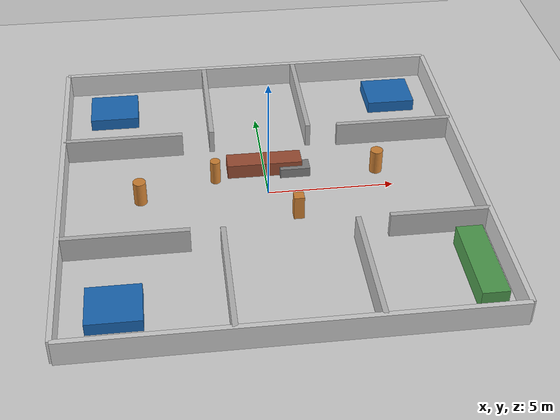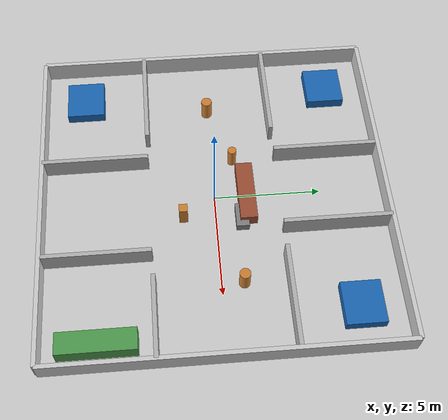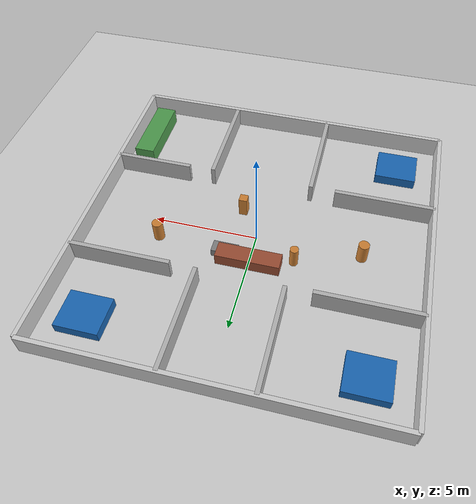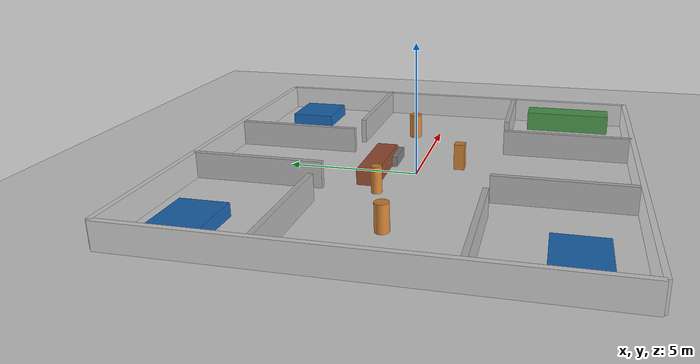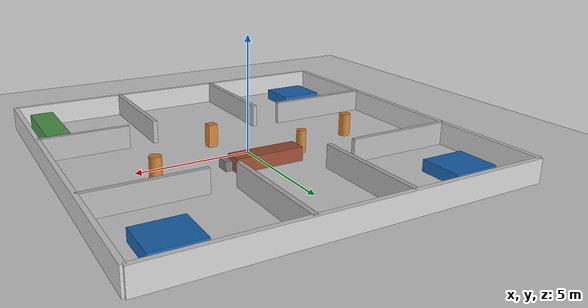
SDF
<?xml version="1.0" ?>
<sdf version="1.6">
  <world name="default">
    <include>
      <uri>model://ground_plane</uri>
    </include>

    <include>
      <uri>model://sun</uri>
    </include>

    <physics type="ode">
      <real_time_update_rate>1000.0</real_time_update_rate>
      <max_step_size>0.001</max_step_size>
    </physics>

    <!-- Outer Perimeter Wall (North) -->
    <model name="outer_wall_north">
      <static>true</static>
      <link name="link">
        <pose>0 8 0.5 0 0 0</pose>
        <collision name="collision">
          <geometry>
            <box>
              <size>16 0.2 1.0</size>
            </box>
          </geometry>
        </collision>
        <visual name="visual">
          <geometry>
            <box>
              <size>16 0.2 1.0</size>
            </box>
          </geometry>
          <material>
            <ambient>0.8 0.8 0.8 1</ambient>
            <diffuse>0.8 0.8 0.8 1</diffuse>
          </material>
        </visual>
      </link>
    </model>

    <!-- Outer Perimeter Wall (South) -->
    <model name="outer_wall_south">
      <static>true</static>
      <link name="link">
        <pose>0 -8 0.5 0 0 0</pose>
        <collision name="collision">
          <geometry>
            <box>
              <size>16 0.2 1.0</size>
            </box>
          </geometry>
        </collision>
        <visual name="visual">
          <geometry>
            <box>
              <size>16 0.2 1.0</size>
            </box>
          </geometry>
          <material>
            <ambient>0.8 0.8 0.8 1</ambient>
            <diffuse>0.8 0.8 0.8 1</diffuse>
          </material>
        </visual>
      </link>
    </model>

    <!-- Outer Perimeter Wall (East) -->
    <model name="outer_wall_east">
      <static>true</static>
      <link name="link">
        <pose>8 0 0.5 0 0 1.5708</pose>
        <collision name="collision">
          <geometry>
            <box>
              <size>16 0.2 1.0</size>
            </box>
          </geometry>
        </collision>
        <visual name="visual">
          <geometry>
            <box>
              <size>16 0.2 1.0</size>
            </box>
          </geometry>
          <material>
            <ambient>0.8 0.8 0.8 1</ambient>
            <diffuse>0.8 0.8 0.8 1</diffuse>
          </material>
        </visual>
      </link>
    </model>

    <!-- Outer Perimeter Wall (West) -->
    <model name="outer_wall_west">
      <static>true</static>
      <link name="link">
        <pose>-8 0 0.5 0 0 1.5708</pose>
        <collision name="collision">
          <geometry>
            <box>
              <size>16 0.2 1.0</size>
            </box>
          </geometry>
        </collision>
        <visual name="visual">
          <geometry>
            <box>
              <size>16 0.2 1.0</size>
            </box>
          </geometry>
          <material>
            <ambient>0.8 0.8 0.8 1</ambient>
            <diffuse>0.8 0.8 0.8 1</diffuse>
          </material>
        </visual>
      </link>
    </model>

    <!-- ================= INTERNAL ROOM PARTITIONS ================= -->

    <!-- Bedroom 1 (Top-Left) Partition Walls -->
    <model name="br1_wall_v">
      <static>true</static>
      <link name="link">
        <pose>-2 5.5 0.5 0 0 1.5708</pose>
        <collision name="collision">
          <geometry>
            <box>
              <size>5 0.2 1.0</size>
            </box>
          </geometry>
        </collision>
        <visual name="visual">
          <geometry>
            <box>
              <size>5 0.2 1.0</size>
            </box>
          </geometry>
          <material>
            <ambient>0.7 0.7 0.7 1</ambient>
            <diffuse>0.7 0.7 0.7 1</diffuse>
          </material>
        </visual>
      </link>
    </model>

    <model name="br1_wall_h">
      <static>true</static>
      <link name="link">
        <pose>-5.6 3 0.5 0 0 0</pose>
        <collision name="collision">
          <geometry>
            <box>
              <size>4.8 0.2 1.0</size>
            </box>
          </geometry>
        </collision>
        <visual name="visual">
          <geometry>
            <box>
              <size>4.8 0.2 1.0</size>
            </box>
          </geometry>
          <material>
            <ambient>0.7 0.7 0.7 1</ambient>
            <diffuse>0.7 0.7 0.7 1</diffuse>
          </material>
        </visual>
      </link>
    </model>

    <!-- Bedroom 2 (Top-Right) Partition Walls -->
    <model name="br2_wall_v">
      <static>true</static>
      <link name="link">
        <pose>2 5.5 0.5 0 0 1.5708</pose>
        <collision name="collision">
          <geometry>
            <box>
              <size>5 0.2 1.0</size>
            </box>
          </geometry>
        </collision>
        <visual name="visual">
          <geometry>
            <box>
              <size>5 0.2 1.0</size>
            </box>
          </geometry>
          <material>
            <ambient>0.7 0.7 0.7 1</ambient>
            <diffuse>0.7 0.7 0.7 1</diffuse>
          </material>
        </visual>
      </link>
    </model>

    <model name="br2_wall_h">
      <static>true</static>
      <link name="link">
        <pose>5.6 3 0.5 0 0 0</pose>
        <collision name="collision">
          <geometry>
            <box>
              <size>4.8 0.2 1.0</size>
            </box>
          </geometry>
        </collision>
        <visual name="visual">
          <geometry>
            <box>
              <size>4.8 0.2 1.0</size>
            </box>
          </geometry>
          <material>
            <ambient>0.7 0.7 0.7 1</ambient>
            <diffuse>0.7 0.7 0.7 1</diffuse>
          </material>
        </visual>
      </link>
    </model>

    <!-- Bedroom 3 (Bottom-Left) Partition Walls -->
    <model name="br3_wall_v">
      <static>true</static>
      <link name="link">
        <pose>-2 -5.5 0.5 0 0 1.5708</pose>
        <collision name="collision">
          <geometry>
            <box>
              <size>5 0.2 1.0</size>
            </box>
          </geometry>
        </collision>
        <visual name="visual">
          <geometry>
            <box>
              <size>5 0.2 1.0</size>
            </box>
          </geometry>
          <material>
            <ambient>0.7 0.7 0.7 1</ambient>
            <diffuse>0.7 0.7 0.7 1</diffuse>
          </material>
        </visual>
      </link>
    </model>

    <model name="br3_wall_h">
      <static>true</static>
      <link name="link">
        <pose>-5.6 -3 0.5 0 0 0</pose>
        <collision name="collision">
          <geometry>
            <box>
              <size>4.8 0.2 1.0</size>
            </box>
          </geometry>
        </collision>
        <visual name="visual">
          <geometry>
            <box>
              <size>4.8 0.2 1.0</size>
            </box>
          </geometry>
          <material>
            <ambient>0.7 0.7 0.7 1</ambient>
            <diffuse>0.7 0.7 0.7 1</diffuse>
          </material>
        </visual>
      </link>
    </model>

    <!-- Kitchen (Bottom-Right) Partition Walls -->
    <model name="kitchen_wall_v">
      <static>true</static>
      <link name="link">
        <pose>3 -5.5 0.5 0 0 1.5708</pose>
        <collision name="collision">
          <geometry>
            <box>
              <size>5 0.2 1.0</size>
            </box>
          </geometry>
        </collision>
        <visual name="visual">
          <geometry>
            <box>
              <size>5 0.2 1.0</size>
            </box>
          </geometry>
          <material>
            <ambient>0.7 0.7 0.7 1</ambient>
            <diffuse>0.7 0.7 0.7 1</diffuse>
          </material>
        </visual>
      </link>
    </model>

    <model name="kitchen_wall_h">
      <static>true</static>
      <link name="link">
        <pose>6.1 -3 0.5 0 0 0</pose>
        <collision name="collision">
          <geometry>
            <box>
              <size>3.8 0.2 1.0</size>
            </box>
          </geometry>
        </collision>
        <visual name="visual">
          <geometry>
            <box>
              <size>3.8 0.2 1.0</size>
            </box>
          </geometry>
          <material>
            <ambient>0.7 0.7 0.7 1</ambient>
            <diffuse>0.7 0.7 0.7 1</diffuse>
          </material>
        </visual>
      </link>
    </model>

    <!-- ================= HOUSEHOLD FURNITURE OBSTACLES ================= -->

    <!-- BR1 Bed -->
    <model name="br1_bed">
      <static>true</static>
      <link name="link">
        <pose>-6 6 0.25 0 0 0</pose>
        <collision name="collision">
          <geometry>
            <box>
              <size>2.0 1.8 0.5</size>
            </box>
          </geometry>
        </collision>
        <visual name="visual">
          <geometry>
            <box>
              <size>2.0 1.8 0.5</size>
            </box>
          </geometry>
          <material>
            <ambient>0.1 0.4 0.7 1</ambient>
            <diffuse>0.1 0.4 0.7 1</diffuse>
          </material>
        </visual>
      </link>
    </model>

    <!-- BR2 Bed -->
    <model name="br2_bed">
      <static>true</static>
      <link name="link">
        <pose>6 6 0.25 0 0 0</pose>
        <collision name="collision">
          <geometry>
            <box>
              <size>2.0 1.8 0.5</size>
            </box>
          </geometry>
        </collision>
        <visual name="visual">
          <geometry>
            <box>
              <size>2.0 1.8 0.5</size>
            </box>
          </geometry>
          <material>
            <ambient>0.1 0.4 0.7 1</ambient>
            <diffuse>0.1 0.4 0.7 1</diffuse>
          </material>
        </visual>
      </link>
    </model>

    <!-- BR3 Bed -->
    <model name="br3_bed">
      <static>true</static>
      <link name="link">
        <pose>-6 -6 0.25 0 0 0</pose>
        <collision name="collision">
          <geometry>
            <box>
              <size>2.0 1.8 0.5</size>
            </box>
          </geometry>
        </collision>
        <visual name="visual">
          <geometry>
            <box>
              <size>2.0 1.8 0.5</size>
            </box>
          </geometry>
          <material>
            <ambient>0.1 0.4 0.7 1</ambient>
            <diffuse>0.1 0.4 0.7 1</diffuse>
          </material>
        </visual>
      </link>
    </model>

    <!-- Kitchen Countertop -->
    <model name="kitchen_counter">
      <static>true</static>
      <link name="link">
        <pose>7 -5.5 0.4 0 0 0</pose>
        <collision name="collision">
          <geometry>
            <box>
              <size>1.0 3.5 0.8</size>
            </box>
          </geometry>
        </collision>
        <visual name="visual">
          <geometry>
            <box>
              <size>1.0 3.5 0.8</size>
            </box>
          </geometry>
          <material>
            <ambient>0.3 0.6 0.3 1</ambient>
            <diffuse>0.3 0.6 0.3 1</diffuse>
          </material>
        </visual>
      </link>
    </model>

    <!-- Living Room Sofa -->
    <model name="living_sofa">
      <static>true</static>
      <link name="link">
        <pose>0 1.5 0.3 0 0 0</pose>
        <collision name="collision">
          <geometry>
            <box>
              <size>3.0 0.8 0.6</size>
            </box>
          </geometry>
        </collision>
        <visual name="visual">
          <geometry>
            <box>
              <size>3.0 0.8 0.6</size>
            </box>
          </geometry>
          <material>
            <ambient>0.6 0.3 0.2 1</ambient>
            <diffuse>0.6 0.3 0.2 1</diffuse>
          </material>
        </visual>
      </link>
    </model>

    <!-- Living Room Coffee Table -->
    <model name="coffee_table">
      <static>true</static>
      <link name="link">
        <pose>1.2 1.2 0.2 0 0 0</pose>
        <collision name="collision">
          <geometry>
            <box>
              <size>1.2 0.6 0.4</size>
            </box>
          </geometry>
        </collision>
        <visual name="visual">
          <geometry>
            <box>
              <size>1.2 0.6 0.4</size>
            </box>
          </geometry>
          <material>
            <ambient>0.5 0.5 0.5 1</ambient>
            <diffuse>0.5 0.5 0.5 1</diffuse>
          </material>
        </visual>
      </link>
    </model>

    <!-- Hallway Column Pillar 1 -->
    <model name="hall_pillar_1">
      <static>true</static>
      <link name="link">
        <pose>-5 0 0.5 0 0 0</pose>
        <collision name="collision">
          <geometry>
            <cylinder>
              <radius>0.25</radius>
              <length>1.0</length>
            </cylinder>
          </geometry>
        </collision>
        <visual name="visual">
          <geometry>
            <cylinder>
              <radius>0.25</radius>
              <length>1.0</length>
            </cylinder>
          </geometry>
          <material>
            <ambient>0.8 0.5 0.2 1</ambient>
            <diffuse>0.8 0.5 0.2 1</diffuse>
          </material>
        </visual>
      </link>
    </model>

    <!-- Hallway Column Pillar 2 -->
    <model name="hall_pillar_2">
      <static>true</static>
      <link name="link">
        <pose>4.5 1.0 0.5 0 0 0</pose>
        <collision name="collision">
          <geometry>
            <cylinder>
              <radius>0.25</radius>
              <length>1.0</length>
            </cylinder>
          </geometry>
        </collision>
        <visual name="visual">
          <geometry>
            <cylinder>
              <radius>0.25</radius>
              <length>1.0</length>
            </cylinder>
          </geometry>
          <material>
            <ambient>0.8 0.5 0.2 1</ambient>
            <diffuse>0.8 0.5 0.2 1</diffuse>
          </material>
        </visual>
      </link>
    </model>

    <!-- New Hallway Box Obstacle -->
    <model name="hall_box_obstacle">
      <static>true</static>
      <link name="link">
        <pose>1.0 -1.5 0.5 0 0 0</pose>
        <collision name="collision">
          <geometry>
            <box>
              <size>0.4 0.4 1.0</size>
            </box>
          </geometry>
        </collision>
        <visual name="visual">
          <geometry>
            <box>
              <size>0.4 0.4 1.0</size>
            </box>
          </geometry>
          <material>
            <ambient>0.8 0.5 0.2 1</ambient>
            <diffuse>0.8 0.5 0.2 1</diffuse>
          </material>
        </visual>
      </link>
    </model>

    <!-- New Hallway Cylinder Obstacle -->
    <model name="hall_cylinder_obstacle">
      <static>true</static>
      <link name="link">
        <pose>-2.0 1.0 0.5 0 0 0</pose>
        <collision name="collision">
          <geometry>
            <cylinder>
              <radius>0.2</radius>
              <length>1.0</length>
            </cylinder>
          </geometry>
        </collision>
        <visual name="visual">
          <geometry>
            <cylinder>
              <radius>0.2</radius>
              <length>1.0</length>
            </cylinder>
          </geometry>
          <material>
            <ambient>0.8 0.5 0.2 1</ambient>
            <diffuse>0.8 0.5 0.2 1</diffuse>
          </material>
        </visual>
      </link>
    </model>

  </world>
</sdf>
